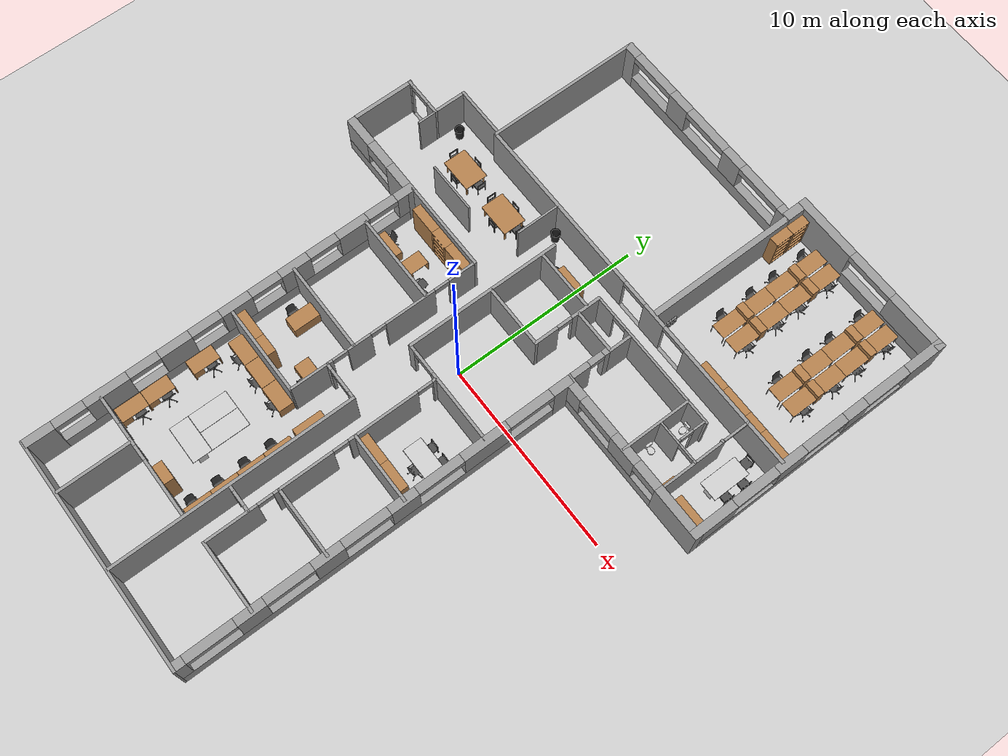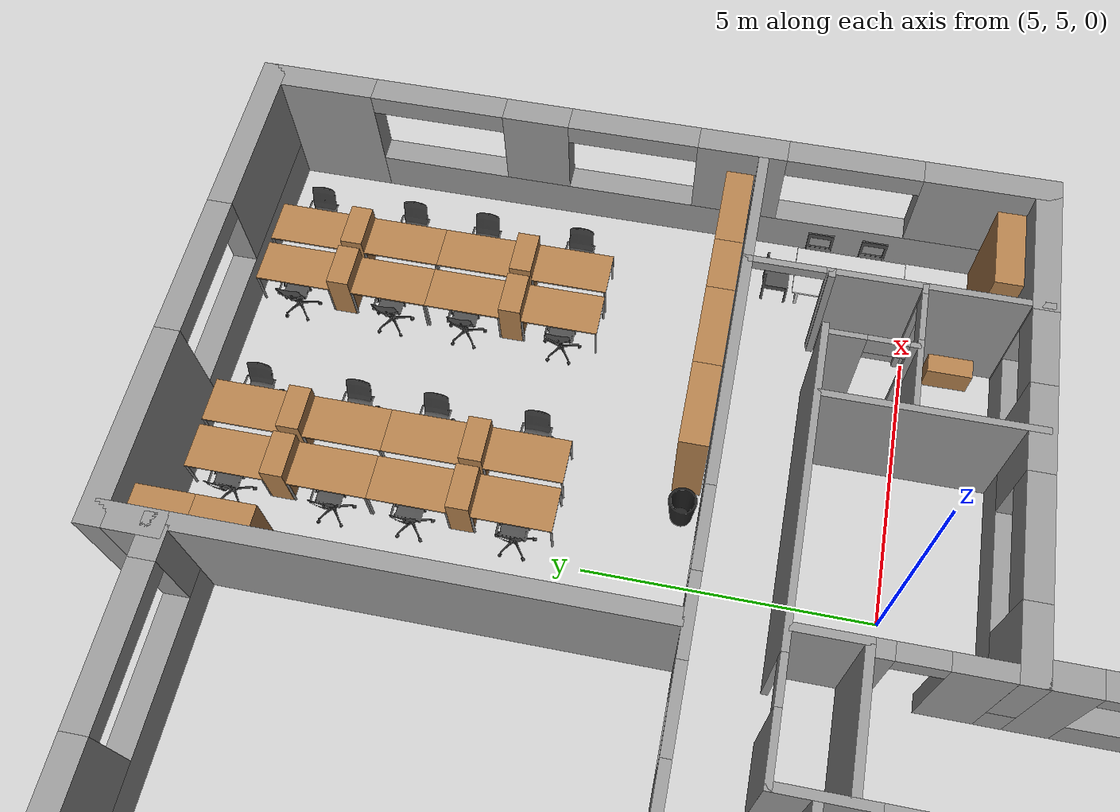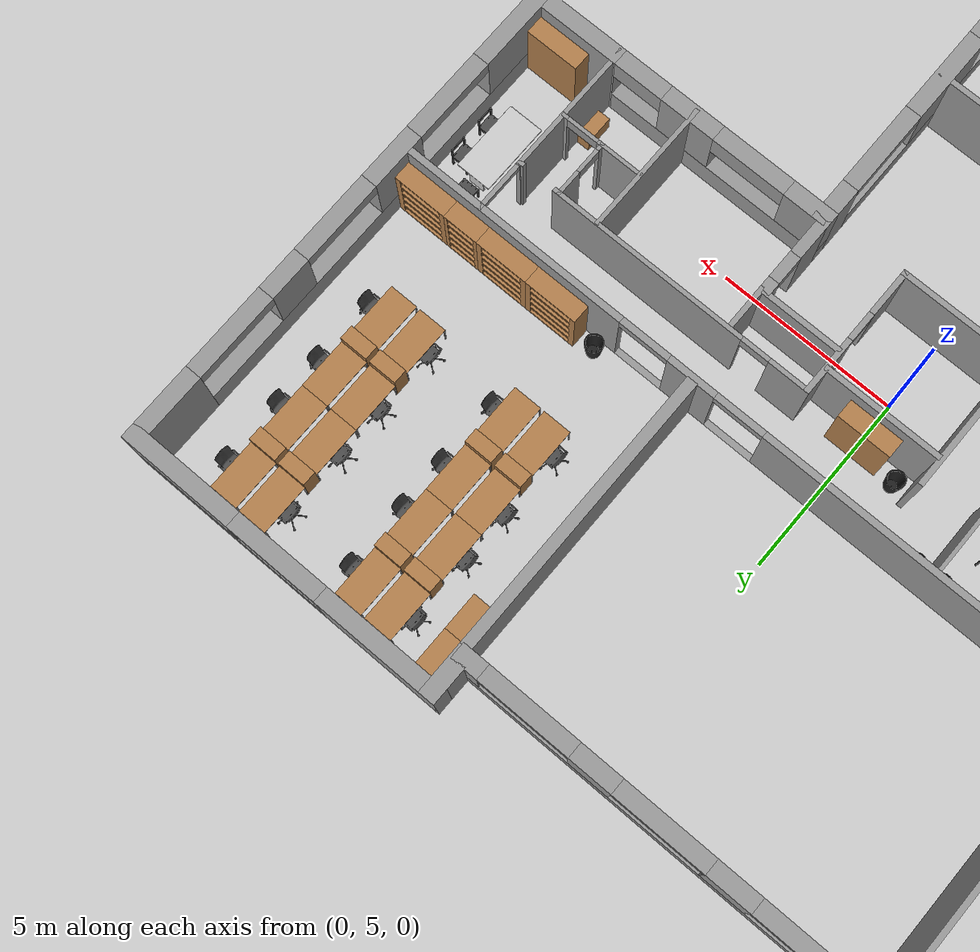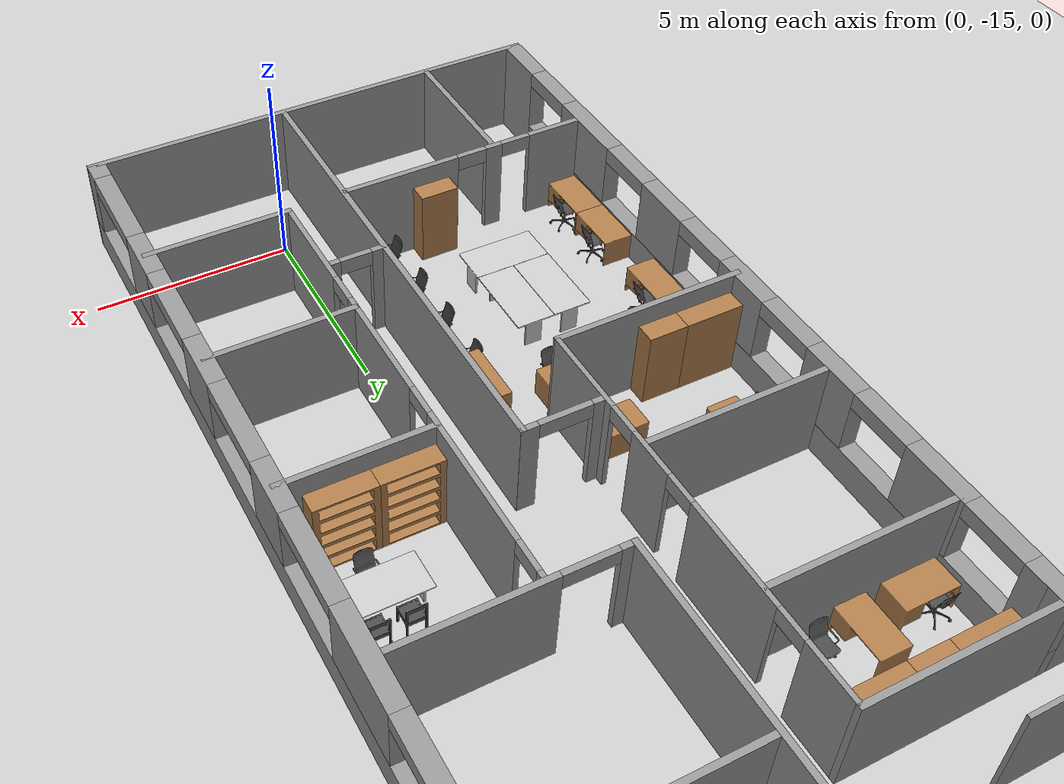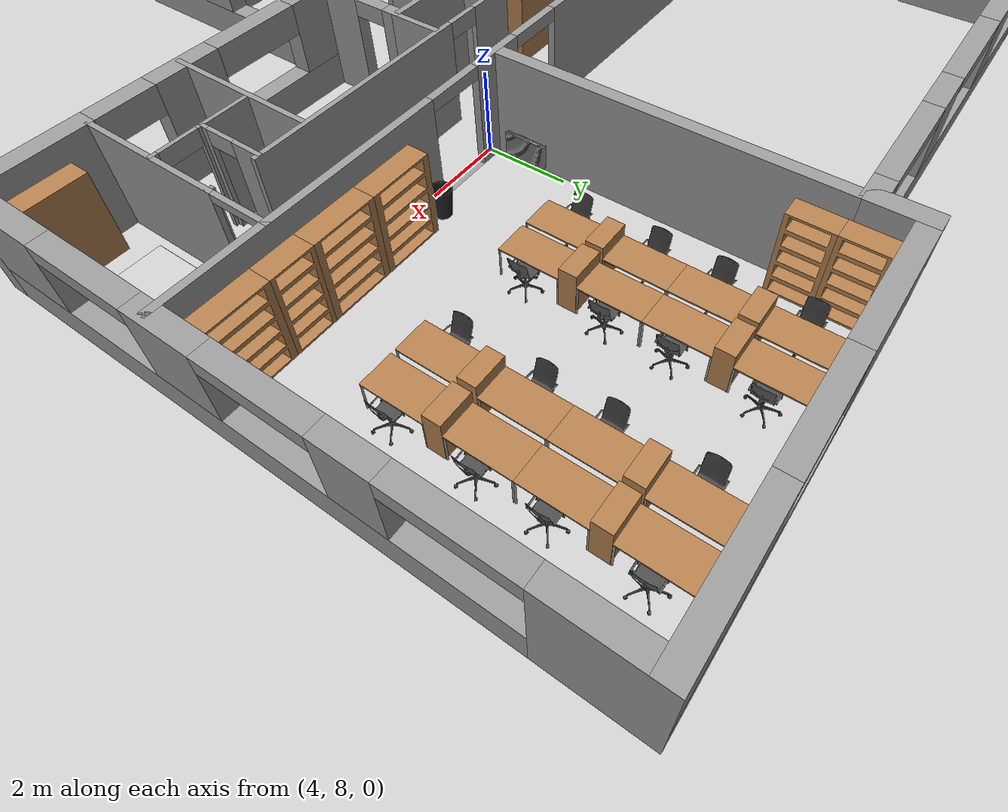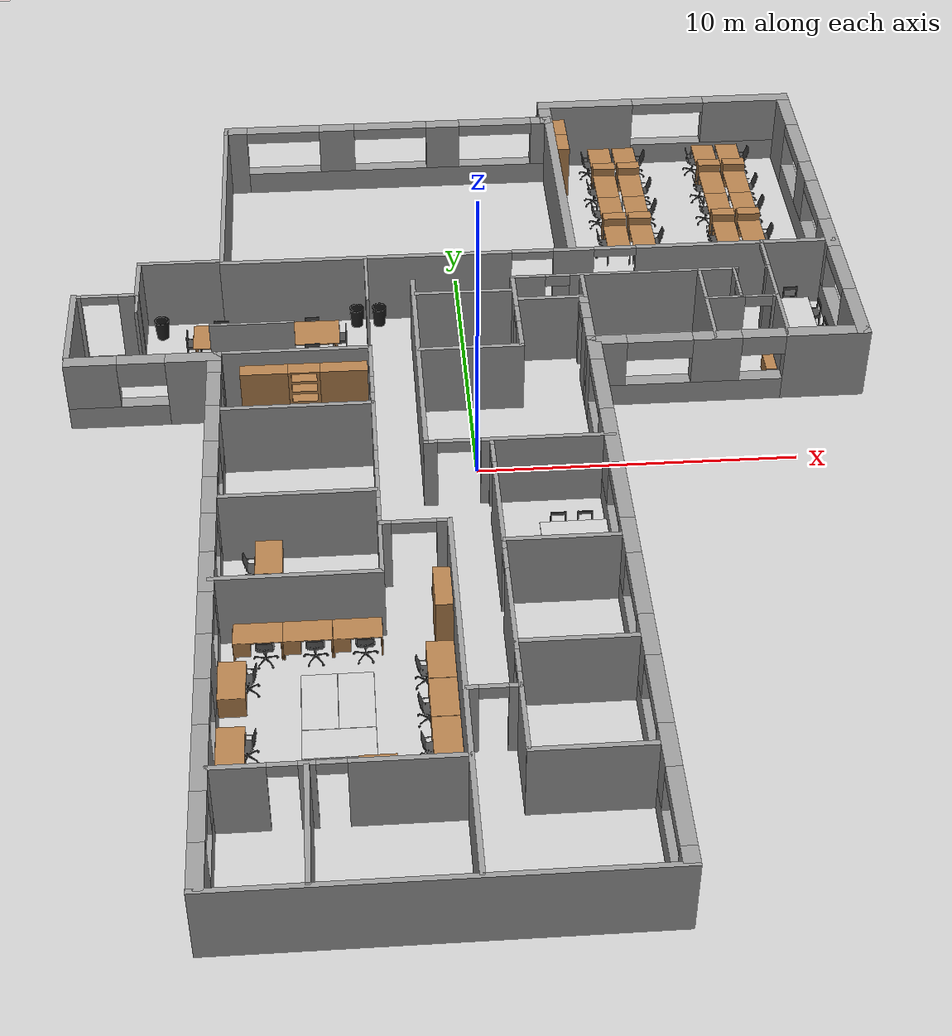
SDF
<?xml version="1.0" ?>
<sdf version="1.5">
  <world name="default">
    <!-- A global light source -->
    <include>
      <uri>model://sun</uri>
    </include>
    <!-- A ground plane -->
    <include>
      <uri>model://ground_plane</uri>
    </include>
    <!-- Centro Piaggio -->
    <include>
      <uri>model://CentroPiaggioReal</uri>
      <name>CentroPiaggio</name>
      <pose>0 0 0 0 0 0</pose>
    </include>
    <!-- Furniture-->
        <!-- LAB -->
        <include>
            <uri>model://real_table</uri>
            <pose>5.73 16.24 0 0 0 1.57</pose>
        </include>
        <include>
            <uri>model://dresser</uri>
            <pose>5.73 15.34 0.5 0 0 1.57</pose>
        </include>
        <include>
            <uri>model://real_table</uri>
            <pose>5.73 14.44 0 0 0 1.57</pose>
        </include>
        <include>
            <uri>model://real_table</uri>
            <pose>5.73 13.04 0 0 0 1.57</pose>
        </include>
        <include>
            <uri>model://dresser</uri>
            <pose>5.73 12.14 0.5 0 0 1.57</pose>
        </include>
        <include>
            <uri>model://real_table</uri>
            <pose>5.73 11.24 0 0 0 1.57</pose>
        </include>

        <include>
            <uri>model://real_table</uri>
            <pose>6.63 16.24 0 0 0 1.57</pose>
        </include>
        <include>
            <uri>model://dresser</uri>
            <pose>6.63 15.34 0.5 0 0 1.57</pose>
        </include>
        <include>
            <uri>model://real_table</uri>
            <pose>6.63 14.44 0 0 0 1.57</pose>
        </include>
        <include>
            <uri>model://real_table</uri>
            <pose>6.63 13.04 0 0 0 1.57</pose>
        </include>
        <include>
            <uri>model://dresser</uri>
            <pose>6.63 12.14 0.5 0 0 1.57</pose>
        </include>
        <include>
            <uri>model://real_table</uri>
            <pose>6.63 11.24 0 0 0 1.57</pose>
        </include>

        <include>
            <uri>model://real_table</uri>
            <pose>9.6 16.24 0 0 0 1.57</pose>
        </include>
        <include>
            <uri>model://dresser</uri>
            <pose>9.6 15.34 0.5 0 0 1.57</pose>
        </include>
        <include>
            <uri>model://real_table</uri>
            <pose>9.6 14.44 0 0 0 1.57</pose>
        </include>
        <include>
            <uri>model://real_table</uri>
            <pose>9.6 13.04 0 0 0 1.57</pose>
        </include>
        <include>
            <uri>model://dresser</uri>
            <pose>9.6 12.14 0.5 0 0 1.57</pose>
        </include>
        <include>
            <uri>model://real_table</uri>
            <pose>9.6 11.24 0 0 0 1.57</pose>
        </include>

        <include>
            <uri>model://real_table</uri>
            <pose>10.5 16.24 0 0 0 1.57</pose>
        </include>
        <include>
            <uri>model://dresser</uri>
            <pose>10.5 15.34 0.5 0 0 1.57</pose>
        </include>
        <include>
            <uri>model://real_table</uri>
            <pose>10.5 14.44 0 0 0 1.57</pose>
        </include>
        <include>
            <uri>model://real_table</uri>
            <pose>10.5 13.04 0 0 0 1.57</pose>
        </include>
        <include>
            <uri>model://dresser</uri>
            <pose>10.5 12.14 0.5 0 0 1.57</pose>
        </include>
        <include>
            <uri>model://real_table</uri>
            <pose>10.5 11.24 0 0 0 1.57</pose>
        </include>

        <include>
            <uri>model://office_chair</uri>
            <pose>5.15 16.2 0 0 0 1.57</pose>
        </include>
        <include>
            <uri>model://office_chair</uri>
            <pose>5.15 14.4 0 0 0 1.57</pose>
        </include>
        <include>
            <uri>model://office_chair</uri>
            <pose>5.15 13 0 0 0 1.57</pose>
        </include>
        <include>
            <uri>model://office_chair</uri>
            <pose>5.15 11.2 0 0 0 1.57</pose>
        </include>
        <include>
            <uri>model://office_chair</uri>
            <pose>7.2 16.2 0 0 0 -1.57</pose>
        </include>
        <include>
            <uri>model://office_chair</uri>
            <pose>7.2 14.4 0 0 0 -1.57</pose>
        </include>
        <include>
            <uri>model://office_chair</uri>
            <pose>7.2 13 0 0 0 -1.57</pose>
        </include>
        <include>
            <uri>model://office_chair</uri>
            <pose>7.2 11.2 0 0 0 -1.57</pose>
        </include>

        <include>
            <uri>model://office_chair</uri>
            <pose>9.02 16.2 0 0 0 1.57</pose>
        </include>
        <include>
            <uri>model://office_chair</uri>
            <pose>9.02 14.4 0 0 0 1.57</pose>
        </include>
        <include>
            <uri>model://office_chair</uri>
            <pose>9.02 13 0 0 0 1.57</pose>
        </include>
        <include>
            <uri>model://office_chair</uri>
            <pose>9.02 11.2 0 0 0 1.57</pose>
        </include>
        <include>
            <uri>model://office_chair</uri>
            <pose>11.07 16.2 0 0 0 -1.57</pose>
        </include>
        <include>
            <uri>model://office_chair</uri>
            <pose>11.07 14.4 0 0 0 -1.57</pose>
        </include>
        <include>
            <uri>model://office_chair</uri>
            <pose>11.07 13 0 0 0 -1.57</pose>
        </include>
        <include>
            <uri>model://office_chair</uri>
            <pose>11.07 11.2 0 0 0 -1.57</pose>
        </include>

        <include>
            <uri>model://bookshelf_1_5m</uri>
            <pose>11.5 8.48 0 0 0 3.14159</pose>
        </include>
        <include>
            <uri>model://bookshelf_1m</uri>
            <pose>10.25 8.48 0 0 0 3.14159</pose>
        </include>
        <include>
            <uri>model://bookshelf_1_5m</uri>
            <pose>9 8.48 0 0 0 3.14159</pose>
        </include>
        <include>
            <uri>model://bookshelf_1_5m</uri>
            <pose>7.5 8.48 0 0 0 3.14159</pose>
        </include>

        <include>
            <uri>model://bookshelf_1m</uri>
            <pose>4.17 16.5 0 0 0 1.57</pose>
        </include>
        <include>
            <uri>model://bookshelf_1m</uri>
            <pose>4.17 15.5 0 0 0 1.57</pose>
        </include>
        <include>
            <uri>model://radiator</uri>
            <pose>4 9 0 0 0 0</pose>
        </include>
        <include>
            <uri>model://trash</uri>
            <pose>6.3 8.5 0 0 0 0</pose>
        </include>

        <!--TOILET-->
        <include>
            <uri>model://toilet</uri>
            <pose>8.1 6.6 0 0 0 0</pose>
        </include>
        <include>
            <uri>model://toilet</uri>
            <pose>7.9 4.4 0 0 0 1.57</pose>
        </include>
        <include>
            <uri>model://dresser</uri>
            <pose>9.9 4.2 0 0 0 0</pose>
        </include>

        <!--ACQUARIO-->
        <include>
            <uri>model://acquario_table</uri>
            <pose>-5 6.35 0 0 0 0</pose>
        </include>
        <include>
            <uri>model://acquario_table</uri>
            <pose>-8 6.35 0 0 0 0</pose>
        </include>
        <include>
            <uri>model://trash</uri>
            <pose>-2.75 7.75 0 0 0 0</pose>
        </include>
        <include>
            <uri>model://trash</uri>
            <pose>-3.5 7.75 0 0 0 0</pose>
        </include>
        <include>
            <uri>model://trash</uri>
            <pose>-10 7.5 0 0 0 0</pose>
        </include>
        <include>
            <uri>model://chair</uri>
            <pose>-5 6.9 0 0 0 0</pose>
        </include>
        <include>
            <uri>model://chair</uri>
            <pose>-8 6.9 0 0 0 0</pose>
        </include>
        <include>
            <uri>model://chair</uri>
            <pose>-5 5.9 0 0 0 3.14</pose>
        </include>
        <include>
            <uri>model://chair</uri>
            <pose>-8 5.9 0 0 0 3.14</pose>
        </include>
        <include>
            <uri>model://chair</uri>
            <pose>-4.1 6.5 0 0 0 -1.57</pose>
        </include>
        <include>
            <uri>model://chair</uri>
            <pose>-7.1 6.5 0 0 0 -1.57</pose>
        </include>
        <include>
            <uri>model://chair</uri>
            <pose>-5.9 6.5 0 0 0 1.57</pose>
        </include>
        <include>
            <uri>model://chair</uri>
            <pose>-8.9 6.5 0 0 0 1.57</pose>
        </include>

        <!--CORRIDOIO-->
        <include>
            <uri>model://bookshelf_1_5m</uri>
            <pose>0 6.32 0 0 0 0</pose>
        </include>
        <include>
            <uri>model://trash</uri>
            <pose>-1.2 6.5 0 0 0 0</pose>
        </include>

        <!--SEGRETERIA 1-->
        <include>
            <uri>model://bookshelf_1_5m</uri>
            <pose>-4 3 0 0 0 3.14</pose>
        </include>
        <include>
            <uri>model://bookshelf_1m</uri>
            <pose>-5.25 3 0 0 0 0</pose>
        </include>
        <include>
            <uri>model://bookshelf_1_5m</uri>
            <pose>-6.5 3 0 0 0 3.14</pose>
        </include>
        <include>
            <uri>model://office_chair</uri>
            <pose>-4.5 1 0 0 0 3.14</pose>
        </include>
        <include>
            <uri>model://lab_desk</uri>
            <pose>-5.5 1.35 0 0 0 1.57</pose>
        </include>
        <include>
            <uri>model://lab_desk</uri>
            <pose>-7 1 0 0 0 3.14</pose>
        </include>
        <include>
            <uri>model://office_chair</uri>
            <pose>-7.2 1.5 0 0 0 0</pose>
        </include>

        <!--LAB-->
        <include>
            <uri>model://lab_desk</uri>
            <pose>-1.63 -12.8 0 0 0 -1.57</pose>
        </include>
        <include>
            <uri>model://office_chair</uri>
            <pose>-2.2 -13 0 0 0 1.57</pose>
        </include>
        <include>
            <uri>model://lab_desk</uri>
            <pose>-1.63 -11.4 0 0 0 -1.57</pose>
        </include>
        <include>
            <uri>model://office_chair</uri>
            <pose>-2.2 -11.6 0 0 0 1.57</pose>
        </include>
        <include>
            <uri>model://lab_desk</uri>
            <pose>-1.63 -10 0 0 0 -1.57</pose>
        </include>
        <include>
            <uri>model://office_chair</uri>
            <pose>-2.2 -10.2 0 0 0 1.57</pose>
        </include>
        <include>
            <uri>model://lab_desk</uri>
            <pose>-1.63 -8.6 0 0 0 -1.57</pose>
        </include>
        <include>
            <uri>model://office_chair</uri>
            <pose>-2.2 -8.8 0 0 0 1.57</pose>
        </include>

        <include>
            <uri>model://bookshelf_1m</uri>
            <pose>-3.5 -13.27 0 0 0 0</pose>
        </include>

        <include>
            <uri>model://lab_desk</uri>
            <pose>-7.4 -12.8 0 0 0 1.57</pose>
        </include>
        <include>
            <uri>model://office_chair</uri>
            <pose>-6.83 -12.6 0 0 0 -1.57</pose>
        </include>
        <include>
            <uri>model://lab_desk</uri>
            <pose>-7.4 -11.4 0 0 0 1.57</pose>
        </include>
        <include>
            <uri>model://office_chair</uri>
            <pose>-6.83 -11.2 0 0 0 -1.57</pose>
        </include>
        <include>
            <uri>model://lab_desk</uri>
            <pose>-7.4 -9 0 0 0 1.57</pose>
        </include>
        <include>
            <uri>model://office_chair</uri>
            <pose>-6.83 -8.8 0 0 0 -1.57</pose>
        </include>

        <include>
            <uri>model://bookshelf_1_5m</uri>
            <pose>-1.48 -7 0 0 0 1.57</pose>
        </include>

        <include>
            <uri>model://trash</uri>
            <pose>-1.5 -5.8 0 0 0 0</pose>
        </include>

        <include>
            <uri>model://lab_desk</uri>
            <pose>-3.9 -7.25 0 0 0 0</pose>
        </include>
        <include>
            <uri>model://office_chair</uri>
            <pose>-3.7 -7.8 0 0 0 3.14</pose>
        </include>
        <include>
            <uri>model://lab_desk</uri>
            <pose>-5.3 -7.25 0 0 0 0</pose>
        </include>
        <include>
            <uri>model://office_chair</uri>
            <pose>-5.1 -7.8 0 0 0 3.14</pose>
        </include>
        <include>
            <uri>model://lab_desk</uri>
            <pose>-6.7 -7.25 0 0 0 0</pose>
        </include>
        <include>
            <uri>model://office_chair</uri>
            <pose>-6.5 -7.8 0 0 0 3.14</pose>
        </include>

        <include>
            <uri>model://lab_table2</uri>
            <pose>-4.5 -11.5 0 0 0 0</pose>
        </include>
        <include>
            <uri>model://lab_table2</uri>
            <pose>-4 -10 0 0 0 1.57</pose>
        </include>
        <include>
            <uri>model://lab_table2</uri>
            <pose>-5 -10 0 0 0 1.57</pose>
        </include>

        <!--UFFICIO PROF P.-->
        <include>
            <uri>model://lab_desk</uri>
            <pose>-3.92 -5.5 0 0 0 0</pose>
        </include>
        <include>
            <uri>model://office_chair</uri>
            <pose>-3.7 -6.1 0 0 0 3.14</pose>
        </include>
        <include>
            <uri>model://lab_desk</uri>
            <pose>-6.4 -4.19 0 0 0 -1.57</pose>
        </include>
        <include>
            <uri>model://office_chair</uri>
            <pose>-7 -4.4 0 0 0 1.57</pose>
        </include>

        <include>
            <uri>model://bookshelf_1_5m</uri>
            <pose>-7 -6.48 0 0 0 0</pose>
        </include>
        <include>
            <uri>model://bookshelf_1m</uri>
            <pose>-5.75 -6.48 0 0 0 0</pose>
        </include>

        <!--UFFICIO PROF B.-->
        <include>
            <uri>model://lab_table2</uri>
            <pose>2.6 -3.8 0 0 0 0</pose>
        </include>
        <include>
            <uri>model://office_chair</uri>
            <pose>2.6 -4.5 0 0 0 3.14</pose>
        </include>
        <include>
            <uri>model://chair</uri>
            <pose>3 -3.2 0 0 0 0</pose>
        </include>
        <include>
            <uri>model://chair</uri>
            <pose>2.2 -3.2 0 0 0 0</pose>
        </include>

        <include>
            <uri>model://bookshelf_1_5m</uri>
            <pose>1.14 -5.45 0 0 0 3.14</pose>
        </include>
        <include>
            <uri>model://bookshelf_1_5m</uri>
            <pose>2.64 -5.45 0 0 0 3.14</pose>
        </include>

        <!--CUCINA-->
        <include>
            <uri>model://lab_table2</uri>
            <pose>11.2 6.2 0 0 0 1.57</pose>
        </include>
        <include>
            <uri>model://chair</uri>
            <pose>11.2 7.5 0 0 0 0</pose>
        </include>
        <include>
            <uri>model://chair</uri>
            <pose>11.8 6.8 0 0 0 -1.57</pose>
        </include>
        <include>
            <uri>model://chair</uri>
            <pose>11.8 5.8 0 0 0 -1.57</pose>
        </include>

        <include>
            <uri>model://bookshelf_1_5m</uri>
            <pose>11.52 3.63 0 0 0 0</pose>
        </include>
  </world>
</sdf>

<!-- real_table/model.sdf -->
<sdf version="1.5">
  <model name="real_table">
    <static>true</static>
    <link name="link">
      <collision name="surface">
        <pose>0 0 0.7 0 0 0</pose>
        <geometry>
          <box>
            <size>1.4 0.8 0.03</size>
          </box>
        </geometry>
        <surface>
          <friction>
            <ode>
              <mu>0.6</mu>
              <mu2>0.6</mu2>
            </ode>
          </friction>
        </surface>
      </collision>
      <visual name="visual1">
        <pose>0 0 0.7 0 0 0</pose>
        <geometry>
          <box>
            <size>1.4 0.8 0.03</size>
          </box>
        </geometry>
        <material>
          <script>
            <uri>file://media/materials/scripts/gazebo.material</uri>
            <name>Gazebo/Wood</name>
          </script>
        </material>
      </visual>
      <collision name="front_left_leg">
        <pose>0.68 0.38 0.35 0 0 0</pose>
        <geometry>
          <cylinder>
            <radius>0.02</radius>
            <length>0.7</length>
          </cylinder>
        </geometry>
      </collision>
      <visual name="front_left_leg">
        <pose>0.68 0.38 0.35 0 0 0</pose>
        <geometry>
          <cylinder>
            <radius>0.02</radius>
            <length>0.7</length>
          </cylinder>
        </geometry>
        <material>
          <script>
            <uri>file://media/materials/scripts/gazebo.material</uri>
            <name>Gazebo/Grey</name>
          </script>
        </material>
      </visual>
      <collision name="front_right_leg">
        <pose>0.68 -0.38 0.35 0 0 0</pose>
        <geometry>
          <cylinder>
            <radius>0.02</radius>
            <length>0.7</length>
          </cylinder>
        </geometry>
      </collision>
      <visual name="front_right_leg">
        <pose>0.68 -0.38 0.35 0 0 0</pose>
        <geometry>
          <cylinder>
            <radius>0.02</radius>
            <length>0.7</length>
          </cylinder>
        </geometry>
        <material>
          <script>
            <uri>file://media/materials/scripts/gazebo.material</uri>
            <name>Gazebo/Grey</name>
          </script>
        </material>
      </visual>
      <collision name="back_right_leg">
        <pose>-0.68 -0.38 0.35 0 0 0</pose>
        <geometry>
          <cylinder>
            <radius>0.02</radius>
            <length>0.7</length>
          </cylinder>
        </geometry>
      </collision>
      <visual name="back_right_leg">
        <pose>-0.68 -0.38 0.35 0 0 0</pose>
        <geometry>
          <cylinder>
            <radius>0.02</radius>
            <length>0.7</length>
          </cylinder>
        </geometry>
        <material>
          <script>
            <uri>file://media/materials/scripts/gazebo.material</uri>
            <name>Gazebo/Grey</name>
          </script>
        </material>
      </visual>
      <collision name="back_left_leg">
        <pose>-0.68 0.38 0.35 0 0 0</pose>
        <geometry>
          <cylinder>
            <radius>0.02</radius>
            <length>0.7</length>
          </cylinder>
        </geometry>
      </collision>
      <visual name="back_left_leg">
        <pose>-0.68 0.38 0.35 0 0 0</pose>
        <geometry>
          <cylinder>
            <radius>0.02</radius>
            <length>0.7</length>
          </cylinder>
        </geometry>
        <material>
          <script>
            <uri>file://media/materials/scripts/gazebo.material</uri>
            <name>Gazebo/Grey</name>
          </script>
        </material>
      </visual>
    </link>
  </model>
</sdf>

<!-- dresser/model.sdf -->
<sdf version="1.5">
<model name="dresser">
  <pose>0 0 0.5 0 0 0</pose>
  <static>true</static>
    <link name="link">
      <inertial>
        <mass>1.0</mass>
        <inertia>
          <ixx>0.083</ixx>       <!-- for a box: ixx = 0.083 * mass * (y*y + z*z) -->
          <ixy>0.0</ixy>         <!-- for a box: ixy = 0 -->
          <ixz>0.0</ixz>         <!-- for a box: ixz = 0 -->
          <iyy>0.083</iyy>       <!-- for a box: iyy = 0.083 * mass * (x*x + z*z) -->
          <iyz>0.0</iyz>         <!-- for a box: iyz = 0 -->
          <izz>0.083</izz>       <!-- for a box: izz = 0.083 * mass * (x*x + y*y) -->
        </inertia>
      </inertial>
      <collision name="collision">
        <geometry>
          <box>
            <size>0.4 0.8 1</size>
          </box>
        </geometry>
      </collision>
      <visual name="visual">
        <geometry>
          <box>
            <size>0.4 0.8 1</size>
          </box>
        </geometry>
        <material>
          <script>
            <uri>file://media/materials/scripts/gazebo.material</uri>
            <name>Gazebo/Wood</name>
          </script>
        </material>
      </visual>
    </link>
  </model>
</sdf>

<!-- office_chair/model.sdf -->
<sdf version="1.5">
  <model name="office_chair">
    <static>true</static>
    <link name='defaultModel_0::custom_0'>
      <pose>0 0 0 0 0 0</pose>
      <gravity>1</gravity>
      <self_collide>0</self_collide>
      <kinematic>0</kinematic>
      <visual name='custom_0_visual'>
        <pose>0 0 0.474 1.57079 0 0</pose>
        <geometry>
          <mesh>
            <uri>model://office_chair/office_chair.dae</uri>
            <scale>0.001 0.001 0.001</scale>
          </mesh>
        </geometry>
        <material>
          <script>
            <uri>file://media/materials/scripts/gazebo.material</uri>
            <name>Gazebo/DarkGrey</name>
          </script>
        </material>
      </visual>
      <collision name='defaultModel_0::custom_0_collision'>
        <geometry>
          <mesh>
            <uri>model://office_chair/office_chair.dae</uri>
            <scale>0.001 0.001 0.001</scale>
          </mesh>
        </geometry>
        <pose>0 0 0.474 1.57079 0 0</pose>
      </collision>
    </link>
  </model>
</sdf>

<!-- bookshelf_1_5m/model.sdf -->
<sdf version="1.5">
  <model name="bookshelf_1_5m">
    <static>true</static>
    <link name='defaultModel_0::custom_0'>
      <pose>0 0 1 1.57 0 0</pose>
      <gravity>1</gravity>
      <self_collide>0</self_collide>
      <kinematic>0</kinematic>
      <visual name='custom_0_visual'>
        <pose>0 0 0 0 0 0</pose>
        <geometry>
          <mesh>
            <uri>model://bookshelf_1_5m/scaffale.dae</uri>
            <scale>1.5 1 1</scale>
          </mesh>
        </geometry>
        <material>
          <script>
            <uri>file://media/materials/scripts/gazebo.material</uri>
            <name>Gazebo/Wood</name>
          </script>
        </material>
      </visual>
      <collision name='defaultModel_0::custom_0_collision'>
        <geometry>
          <mesh>
            <uri>model://bookshelf_1_5m/scaffale.dae</uri>
            <scale>1.5 1 1</scale>
          </mesh>
        </geometry>
        <pose>0 0 0 0 0 0</pose>
      </collision>
    </link>
  </model>
</sdf>

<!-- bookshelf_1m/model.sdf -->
<sdf version="1.5">
  <model name="bookshelf_1m">
    <static>true</static>
    <link name='defaultModel_0::custom_0'>
      <pose>0 0 1 1.57 0 0</pose>
      <gravity>1</gravity>
      <self_collide>0</self_collide>
      <kinematic>0</kinematic>
      <visual name='custom_0_visual'>
        <pose>0 0 0 0 0 0</pose>
        <geometry>
          <mesh>
            <uri>model://bookshelf_1m/scaffale.dae</uri>
          </mesh>
        </geometry>
        <material>
          <script>
            <uri>file://media/materials/scripts/gazebo.material</uri>
            <name>Gazebo/Wood</name>
          </script>
        </material>
      </visual>
      <collision name='defaultModel_0::custom_0_collision'>
        <geometry>
          <mesh>
            <uri>model://bookshelf_1m/scaffale.dae</uri>
          </mesh>
        </geometry>
        <pose>0 0 0 0 0 0</pose>
      </collision>
    </link>
  </model>
</sdf>

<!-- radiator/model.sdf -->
<sdf version="1.5">
  <model name="radiator">
    <static>true</static>
    <link name='defaultModel_0::custom_0'>
      <pose>0 0 0 0 0 0</pose>
      <gravity>1</gravity>
      <self_collide>0</self_collide>
      <kinematic>0</kinematic>
      <visual name='custom_0_visual'>
        <pose>0 0 0 0 0 0</pose>
        <geometry>
          <mesh>
            <uri>model://radiator/radiator.dae</uri>
            <scale>0.001 0.001 0.001</scale>
          </mesh>
        </geometry>
        <material>
          <script>
            <uri>file://media/materials/scripts/gazebo.material</uri>
            <name>Gazebo/Grey</name>
          </script>
        </material>
      </visual>
      <collision name='defaultModel_0::custom_0_collision'>
        <geometry>
          <box>
            <size>0.155 1.05 0.74</size>
          </box>
        </geometry>
        <pose>0 -0.01 0.37 0 0 0</pose>
      </collision>
    </link>
  </model>
</sdf>

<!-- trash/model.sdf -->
<sdf version="1.5">
  <model name="trash">
    <static>true</static>
    <link name='defaultModel_0::custom_0'>
      <pose>0 0 0 0 0 0</pose>
      <gravity>1</gravity>
      <self_collide>0</self_collide>
      <kinematic>0</kinematic>
      <visual name='custom_0_visual'>
        <pose>0 0 0 0 0 0</pose>
        <geometry>
          <mesh>
            <uri>model://trash/trash.dae</uri>
            <scale>0.01 0.01 0.01</scale>
          </mesh>
        </geometry>
        <material>
          <script>
            <uri>file://media/materials/scripts/gazebo.material</uri>
            <name>Gazebo/Black</name>
          </script>
        </material>
      </visual>
      <collision name='defaultModel_0::custom_0_collision'>
        <geometry>
          <mesh>
            <uri>model://trash/trash.dae</uri>
            <scale>0.01 0.01 0.01</scale>
          </mesh>
        </geometry>
        <pose>0 0 0 0 0 0</pose>
      </collision>
    </link>
  </model>
</sdf>

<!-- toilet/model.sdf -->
<sdf version="1.5">
  <model name="toilet">
    <static>true</static>
    <link name='defaultModel_0::custom_0'>
      <pose>0 0 0 0 0 0</pose>
      <gravity>1</gravity>
      <self_collide>0</self_collide>
      <kinematic>0</kinematic>
      <visual name='custom_0_visual'>
        <pose>0 0 0 1.57079 0 0</pose>
        <geometry>
          <mesh>
            <uri>model://toilet/toilet.dae</uri>
            <scale>0.001 0.001 0.001</scale>
          </mesh>
        </geometry>
        <material>
          <script>
            <uri>file://media/materials/scripts/gazebo.material</uri>
            <name>Gazebo/LightGrey</name>
          </script>
        </material>
      </visual>
      <collision name='defaultModel_0::custom_0_collision'>
        <geometry>
          <mesh>
            <uri>model://toilet/toilet.dae</uri>
            <scale>0.001 0.001 0.001</scale>
          </mesh>
        </geometry>
        <pose>0 0 0 1.57079 0 0</pose>
      </collision>
    </link>
  </model>
</sdf>

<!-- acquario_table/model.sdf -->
<sdf version="1.5">
  <model name="acquario_table">
    <static>true</static>
    <link name='defaultModel_0::custom_0'>
      <pose>0 0 0 0 0 0</pose>
      <gravity>1</gravity>
      <self_collide>0</self_collide>
      <kinematic>0</kinematic>
      <visual name='custom_0_visual'>
        <pose>0 0 0 0 0 0</pose>
        <geometry>
          <mesh>
            <uri>model://acquario_table/acquario_table.dae</uri>
            <scale>0.01 0.01 0.01</scale>
          </mesh>
        </geometry>
        <material>
          <script>
            <uri>file://media/materials/scripts/gazebo.material</uri>
            <name>Gazebo/Wood</name>
          </script>
        </material>
      </visual>
      <collision name='defaultModel_0::custom_0_collision'>
        <geometry>
          <mesh>
            <uri>model://acquario_table/acquario_table.dae</uri>
            <scale>0.01 0.01 0.01</scale>
          </mesh>
        </geometry>
        <pose>0 0 0 0 0 0</pose>
      </collision>
    </link>
  </model>
</sdf>

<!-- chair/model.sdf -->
<sdf version="1.5">
  <model name="chair">
    <static>true</static>
    <link name='defaultModel_0::custom_0'>
      <pose>0 0 0 0 0 0</pose>
      <gravity>1</gravity>
      <self_collide>0</self_collide>
      <kinematic>0</kinematic>
      <visual name='custom_0_visual'>
        <pose>0 0 0 0 0 0</pose>
        <geometry>
          <mesh>
            <uri>model://chair/chair.dae</uri>
            <scale>1.7 1.7 1.7</scale>
          </mesh>
        </geometry>
        <material>
          <script>
            <uri>file://media/materials/scripts/gazebo.material</uri>
            <name>Gazebo/DarkGrey</name>
          </script>
        </material>
      </visual>
      <collision name='defaultModel_0::custom_0_collision'>
        <geometry>
          <mesh>
            <uri>model://chair/chair.dae</uri>
            <scale>1.7 1.7 1.7</scale>
          </mesh>
        </geometry>
        <pose>0 0 0 0 0 0</pose>
      </collision>
    </link>
  </model>
</sdf>

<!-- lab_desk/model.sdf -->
<sdf version="1.5">
  <model name="lab_desk">
    <static>true</static>
    <link name='defaultModel_0::custom_0'>
      <pose>0 0 0 0 0 0</pose>
      <gravity>1</gravity>
      <self_collide>0</self_collide>
      <kinematic>0</kinematic>
      <visual name='custom_0_visual'>
        <pose>0 0 0 1.5709 0 0</pose>
        <geometry>
          <mesh>
            <uri>model://lab_desk/lab_desk.dae</uri>
            <scale>0.01 0.01 0.01</scale>
          </mesh>
        </geometry>
        <material>
          <script>
            <uri>file://media/materials/scripts/gazebo.material</uri>
            <name>Gazebo/Wood</name>
          </script>
        </material>
      </visual>
      <collision name='defaultModel_0::custom_0_collision'>
        <geometry>
          <mesh>
            <uri>model://lab_desk/lab_desk.dae</uri>
            <scale>0.01 0.01 0.01</scale>
          </mesh>
        </geometry>
        <pose>0 0 0 1.5709 0 0</pose>
      </collision>
    </link>
  </model>
</sdf>

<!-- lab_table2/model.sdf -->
<sdf version="1.5">
  <model name="lab_table2">
    <static>true</static>
    <link name='defaultModel_0::custom_0'>
      <pose>0 0 0 0 0 0</pose>
      <gravity>1</gravity>
      <self_collide>0</self_collide>
      <kinematic>0</kinematic>
      <visual name='custom_0_visual'>
        <pose>0 0 0 0 0 0</pose>
        <geometry>
          <mesh>
            <uri>model://lab_table2/lab_table2.dae</uri>
            <scale>0.01 0.01 0.01</scale>
          </mesh>
        </geometry>
        <material>
          <script>
            <uri>file://media/materials/scripts/gazebo.material</uri>
            <name>Gazebo/LightGrey</name>
          </script>
        </material>
      </visual>
      <collision name='defaultModel_0::custom_0_collision'>
        <geometry>
          <mesh>
            <uri>model://lab_table2/lab_table2.dae</uri>
            <scale>0.01 0.01 0.01</scale>
          </mesh>
        </geometry>
        <pose>0 0 0 0 0 0</pose>
      </collision>
    </link>
  </model>
</sdf>
